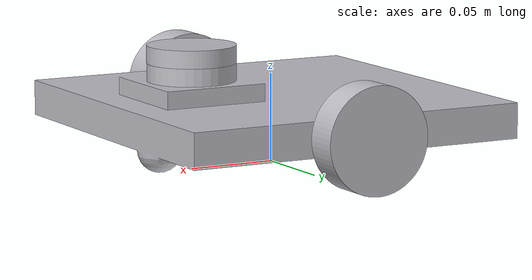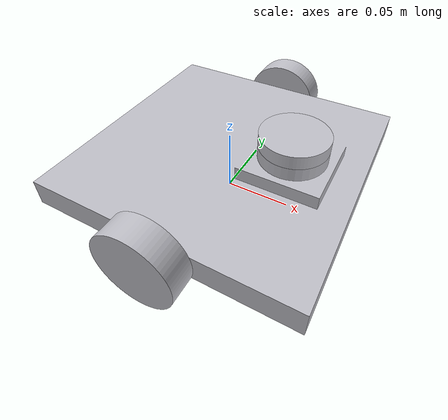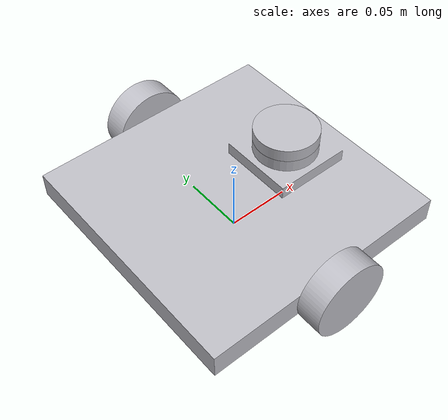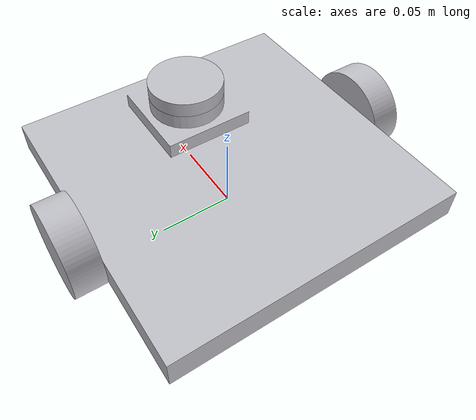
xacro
<?xml version="1.0" ?>
<robot name="mybot" xmlns:xacro="http://www.ros.org/wiki/xacro">

<xacro:include filename="$(find mybot_description)/urdf/materials.xacro" />
<xacro:include filename="$(find mybot_description)/urdf/mybot.trans" />
<xacro:include filename="$(find mybot_description)/urdf/mybot.gazebo" />
<link name="base_link">
  <inertial>
    <origin xyz="0.003193082902071467 0.0 0.030858732601269784" rpy="0 0 0"/>
    <mass value="1.2022274239750057"/>
    <inertia ixx="0.003772" iyy="0.004057" izz="0.007685" ixy="-0.0" iyz="0.0" ixz="-6.8e-05"/>
  </inertial>
  <visual>
    <origin xyz="0 0 0" rpy="0 0 0"/>
    <geometry>
      <mesh filename="package://mybot_description/meshes/base_link.stl" scale="0.001 0.001 0.001"/>
    </geometry>
    <material name="silver"/>
  </visual>
  <collision>
    <origin xyz="0 0 0" rpy="0 0 0"/>
    <geometry>
      <mesh filename="package://mybot_description/meshes/base_link.stl" scale="0.001 0.001 0.001"/>
    </geometry>
  </collision>
</link>

<link name="right_wheel_1">
  <inertial>
    <origin xyz="1.0052123437711858e-17 -0.009999999999999995 6.938893903907228e-18" rpy="0 0 0"/>
    <mass value="0.05259026102109311"/>
    <inertia ixx="1.4e-05" iyy="2.4e-05" izz="1.4e-05" ixy="0.0" iyz="-0.0" ixz="0.0"/>
  </inertial>
  <visual>
    <origin xyz="-0.0 0.1 -0.03" rpy="0 0 0"/>
    <geometry>
      <mesh filename="package://mybot_description/meshes/right_wheel_1.stl" scale="0.001 0.001 0.001"/>
    </geometry>
    <material name="silver"/>
  </visual>
  <collision>
    <origin xyz="-0.0 0.1 -0.03" rpy="0 0 0"/>
    <geometry>
      <mesh filename="package://mybot_description/meshes/right_wheel_1.stl" scale="0.001 0.001 0.001"/>
    </geometry>
  </collision>
</link>

<link name="left_wheel_1">
  <inertial>
    <origin xyz="1.0052123437711858e-17 0.009999999999999995 6.938893903907228e-18" rpy="0 0 0"/>
    <mass value="0.05259026102109311"/>
    <inertia ixx="1.4e-05" iyy="2.4e-05" izz="1.4e-05" ixy="0.0" iyz="0.0" ixz="0.0"/>
  </inertial>
  <visual>
    <origin xyz="-0.0 -0.1 -0.03" rpy="0 0 0"/>
    <geometry>
      <mesh filename="package://mybot_description/meshes/left_wheel_1.stl" scale="0.001 0.001 0.001"/>
    </geometry>
    <material name="silver"/>
  </visual>
  <collision>
    <origin xyz="-0.0 -0.1 -0.03" rpy="0 0 0"/>
    <geometry>
      <mesh filename="package://mybot_description/meshes/left_wheel_1.stl" scale="0.001 0.001 0.001"/>
    </geometry>
  </collision>
</link>

<link name="lidar_1">
  <inertial>
    <origin xyz="-1.3877787807814457e-17 -7.237528875152536e-18 0.0049999999999999906" rpy="0 0 0"/>
    <mass value="0.1541343895667492"/>
    <inertia ixx="2.5e-05" iyy="2.5e-05" izz="4.8e-05" ixy="-0.0" iyz="-0.0" ixz="-0.0"/>
  </inertial>
  <visual>
    <origin xyz="-0.05 -0.0 -0.06" rpy="0 0 0"/>
    <geometry>
      <mesh filename="package://mybot_description/meshes/lidar_1.stl" scale="0.001 0.001 0.001"/>
    </geometry>
    <material name="silver"/>
  </visual>
  <collision>
    <origin xyz="-0.05 -0.0 -0.06" rpy="0 0 0"/>
    <geometry>
      <mesh filename="package://mybot_description/meshes/lidar_1.stl" scale="0.001 0.001 0.001"/>
    </geometry>
  </collision>
</link>

<joint name="Revolute 1" type="continuous">
  <origin xyz="0.0 -0.1 0.03" rpy="0 0 0"/>
  <parent link="base_link"/>
  <child link="right_wheel_1"/>
  <axis xyz="0.0 1.0 0.0"/>
</joint>

<joint name="Revolute 2" type="continuous">
  <origin xyz="0.0 0.1 0.03" rpy="0 0 0"/>
  <parent link="base_link"/>
  <child link="left_wheel_1"/>
  <axis xyz="0.0 1.0 0.0"/>
</joint>

<joint name="Rigid 3" type="fixed">
  <origin xyz="0.05 0.0 0.06" rpy="0 0 0"/>
  <parent link="base_link"/>
  <child link="lidar_1"/>
</joint>

</robot>

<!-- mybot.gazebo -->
<robot name="mybot" xmlns:xacro="http://www.ros.org/wiki/xacro" >

<xacro:property name="body_color" value="Gazebo/Silver" />

<gazebo>
  <plugin name="control" filename="libgazebo_ros_control.so"/>
</gazebo>
<gazebo reference="base_link">
  <material>${body_color}</material>
  <mu1>0.1</mu1>
  <mu2>0.1</mu2>
  <selfCollide>true</selfCollide>
  <gravity>true</gravity>
</gazebo>

<gazebo reference="right_wheel_1">
  <material>${body_color}</material>
  <mu1>1500</mu1>
  <mu2>1500</mu2>
  <selfCollide>true</selfCollide>
</gazebo>

<gazebo reference="left_wheel_1">
  <material>${body_color}</material>
  <mu1>1500</mu1>
  <mu2>1500</mu2>
  <selfCollide>true</selfCollide>
</gazebo>

<gazebo reference="lidar_1">
  <material>${body_color}</material>
  <mu1>0.2</mu1>
  <mu2>0.2</mu2>
  <selfCollide>true</selfCollide>
</gazebo>

<gazebo>
  <plugin name="differential_drive_controller" filename="libgazebo_ros_diff_drive.so">

    <!-- Plugin update rate in Hz -->
    <updateRate>100</updateRate>

    <!-- Name of left joint, defaults to `left_joint` -->
    <leftJoint>Revolute 2</leftJoint>

    <!-- Name of right joint, defaults to `right_joint` -->
    <rightJoint>Revolute 1</rightJoint>

    <!-- The distance from the center of one wheel to the other, in meters, defaults to 0.34 m -->
    <wheelSeparation>0.5380</wheelSeparation>

    <!-- Diameter of the wheels, in meters, defaults to 0.15 m -->
    <wheelDiameter>0.2410</wheelDiameter>

    <!-- Wheel acceleration, in rad/s^2, defaults to 0.0 rad/s^2 -->
    <wheelAcceleration>1.0</wheelAcceleration>

    <!-- Maximum torque which the wheels can produce, in Nm, defaults to 5 Nm -->
    <wheelTorque>50</wheelTorque>

    <!-- Topic to receive geometry_msgs/Twist message commands, defaults to `cmd_vel` -->
    <commandTopic>cmd_vel</commandTopic>

    <!-- Topic to publish nav_msgs/Odometry messages, defaults to `odom` -->
    <odometryTopic>odom</odometryTopic>

    <!-- Odometry frame, defaults to `odom` -->
    <odometryFrame>odom</odometryFrame>

    <!-- Robot frame to calculate odometry from, defaults to `base_footprint` -->
    <robotBaseFrame>base_link</robotBaseFrame>

    <!-- Odometry source, 0 for ENCODER, 1 for WORLD, defaults to WORLD -->
    <odometrySource>1</odometrySource>

    <!-- Set to true to publish transforms for the wheel links, defaults to false -->
    <publishWheelTF>false</publishWheelTF>

    <!-- Set to true to publish transforms for the odometry, defaults to true -->
    <publishOdom>true</publishOdom>

    <!-- Set to true to publish sensor_msgs/JointState on /joint_states for the wheel joints, defaults to false -->
    <publishWheelJointState>false</publishWheelJointState>

    <!-- Set to true to swap right and left wheels, defaults to true -->
    <legacyMode>false</legacyMode>
  </plugin>
</gazebo>

 <!-- hokuyo -->
  <gazebo reference="lidar_1">
    <sensor type="ray" name="head_hokuyo_sensor">
      <pose>0 0 0 0 0 0</pose>
      <visualize>true</visualize>
      <update_rate>40</update_rate>
      <ray>
        <scan>
          <horizontal>
            <samples>720</samples>
            <resolution>1</resolution>
            <min_angle>-1.570796</min_angle>
            <max_angle>1.570796</max_angle>
          </horizontal>
        </scan>
        <range>
          <min>0.10</min>
          <max>30.0</max>
          <resolution>0.01</resolution>
        </range>
        <noise>
          <type>gaussian</type>
          <mean>0.0</mean>
          <stddev>0.01</stddev>
        </noise>
      </ray>
      <plugin name="gazebo_ros_head_hokuyo_controller" filename="libgazebo_ros_laser.so">
        <topicName>/scan</topicName>
        <frameName>lidar_1</frameName>
      </plugin>
    </sensor>
  </gazebo>

</robot>
